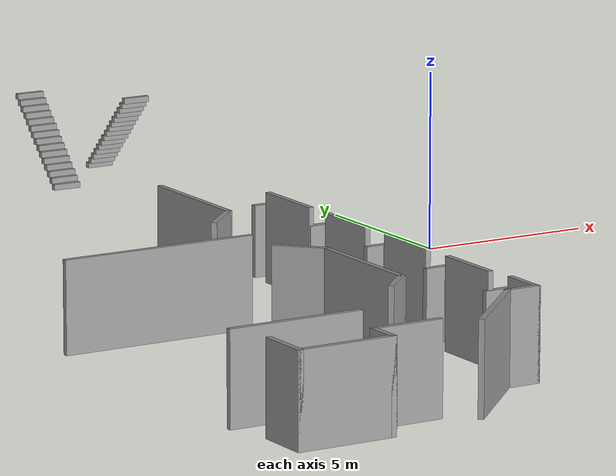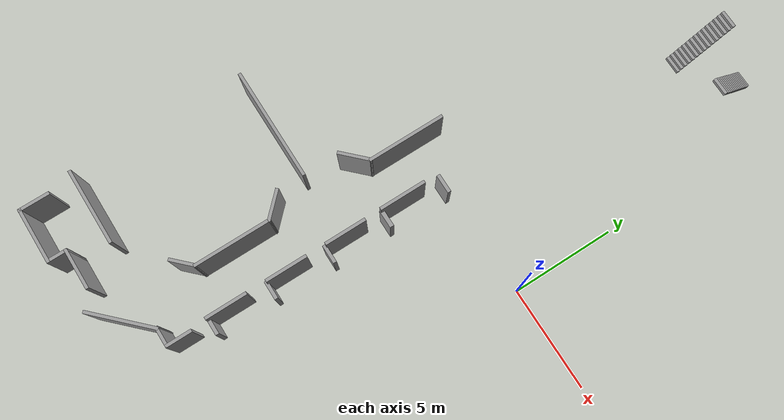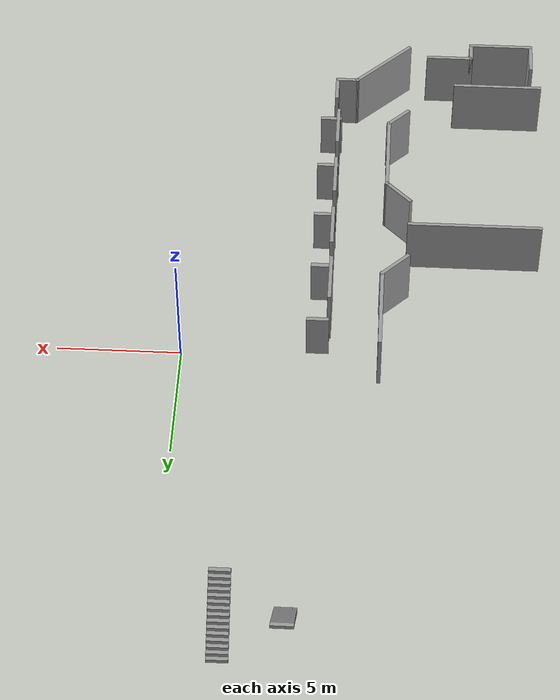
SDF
<sdf version="1.6">
 <model name="ca_vignal_1">
  <pose>-8.09627 -0.676503 0 0 -0 0</pose>
  <link name="Door_0">
   <collision name="Door_0_Collision">
    <geometry><box><size>0.865695 0.2 2</size></box></geometry>
    <pose>0 0 1 0 -0 0</pose>
   </collision>
   <visual name="Door_0_Visual">
    <pose>0 0 1 0 -0 0</pose>
    <geometry><box><size>0.865695 0.2 2</size></box></geometry>
    <material>
     <script><uri>file://media/materials/scripts/gazebo.material</uri><name>Gazebo/Grey</name></script>
    </material>
   </visual>
   <pose>2.58868 -2.60647 0 0 -0 0</pose>
  </link>
  <link name="Door_1">
   <collision name="Door_1_Collision">
    <geometry><box><size>0.9 0.17 2</size></box></geometry>
    <pose>0 0 1 0 -0 0</pose>
   </collision>
   <visual name="Door_1_Visual">
    <pose>0 0 1 0 -0 0</pose>
    <geometry><box><size>0.9 0.17 2</size></box></geometry>
    <material>
     <script><uri>file://media/materials/scripts/gazebo.material</uri><name>Gazebo/Grey</name></script>
    </material>
   </visual>
   <pose>2.62198 0.308665 0 0 -0 0</pose>
  </link>
  <link name="Door_2">
   <collision name="Door_2_Collision">
    <geometry><box><size>0.9 0.17 2</size></box></geometry>
    <pose>0 0 1 0 -0 0</pose>
   </collision>
   <visual name="Door_2_Visual">
    <pose>0 0 1 0 -0 0</pose>
    <geometry><box><size>0.9 0.17 2</size></box></geometry>
    <material>
     <script><uri>file://media/materials/scripts/gazebo.material</uri><name>Gazebo/Grey</name></script>
    </material>
   </visual>
   <pose>2.58767 -5.48891 0 0 -0 0</pose>
  </link>
  <link name="Door_3">
   <collision name="Door_3_Collision">
    <geometry><box><size>0.9 0.17 2</size></box></geometry>
    <pose>0 0 1 0 -0 0</pose>
   </collision>
   <visual name="Door_3_Visual">
    <pose>0 0 1 0 -0 0</pose>
    <geometry><box><size>0.9 0.17 2</size></box></geometry>
    <material>
     <script><uri>file://media/materials/scripts/gazebo.material</uri><name>Gazebo/Grey</name></script>
    </material>
   </visual>
   <pose>2.57631 -8.37477 0 0 -0 0</pose>
  </link>
  <link name="Door_4">
   <collision name="Door_4_Collision">
    <geometry><box><size>0.9 0.17 2</size></box></geometry>
    <pose>0 0 1 0 -0 0</pose>
   </collision>
   <visual name="Door_4_Visual">
    <pose>0 0 1 0 -0 0</pose>
    <geometry><box><size>0.9 0.17 2</size></box></geometry>
    <material>
     <script><uri>file://media/materials/scripts/gazebo.material</uri><name>Gazebo/Grey</name></script>
    </material>
   </visual>
   <pose>2.53686 -11.2152 0 0 -0 0</pose>
  </link>
  <link name="Stairs_0">
   <visual name="Stairs_0_Visual_0">
    <pose>5.56857 15.1204 0.083333 0 -0 0</pose>
    <geometry><box><size>0.816 0.160476 0.166667</size></box></geometry>
    <material>
     <script><uri>file://media/materials/scripts/gazebo.material</uri><name>Gazebo/Grey</name></script>
     <ambient>1 1 1 1</ambient>
    </material>
   </visual>
   <collision name="Stairs_0_Collision_0">
    <geometry><box><size>0.816 0.160476 0.166667</size></box></geometry>
    <pose>5.56857 15.1204 0.083333 0 -0 0</pose>
   </collision>
   <visual name="Stairs_0_Visual_1">
    <pose>5.56857 14.96 0.25 0 -0 0</pose>
    <geometry><box><size>0.816 0.160476 0.166667</size></box></geometry>
    <material>
     <script><uri>file://media/materials/scripts/gazebo.material</uri><name>Gazebo/Grey</name></script>
     <ambient>1 1 1 1</ambient>
    </material>
   </visual>
   <collision name="Stairs_0_Collision_1">
    <geometry><box><size>0.816 0.160476 0.166667</size></box></geometry>
    <pose>5.56857 14.96 0.25 0 -0 0</pose>
   </collision>
   <visual name="Stairs_0_Visual_2">
    <pose>5.56857 14.7995 0.416667 0 -0 0</pose>
    <geometry><box><size>0.816 0.160476 0.166667</size></box></geometry>
    <material>
     <script><uri>file://media/materials/scripts/gazebo.material</uri><name>Gazebo/Grey</name></script>
     <ambient>1 1 1 1</ambient>
    </material>
   </visual>
   <collision name="Stairs_0_Collision_2">
    <geometry><box><size>0.816 0.160476 0.166667</size></box></geometry>
    <pose>5.56857 14.7995 0.416667 0 -0 0</pose>
   </collision>
   <visual name="Stairs_0_Visual_3">
    <pose>5.56857 14.639 0.583333 0 -0 0</pose>
    <geometry><box><size>0.816 0.160476 0.166667</size></box></geometry>
    <material>
     <script><uri>file://media/materials/scripts/gazebo.material</uri><name>Gazebo/Grey</name></script>
     <ambient>1 1 1 1</ambient>
    </material>
   </visual>
   <collision name="Stairs_0_Collision_3">
    <geometry><box><size>0.816 0.160476 0.166667</size></box></geometry>
    <pose>5.56857 14.639 0.583333 0 -0 0</pose>
   </collision>
   <visual name="Stairs_0_Visual_4">
    <pose>5.56857 14.4785 0.75 0 -0 0</pose>
    <geometry><box><size>0.816 0.160476 0.166667</size></box></geometry>
    <material>
     <script><uri>file://media/materials/scripts/gazebo.material</uri><name>Gazebo/Grey</name></script>
     <ambient>1 1 1 1</ambient>
    </material>
   </visual>
   <collision name="Stairs_0_Collision_4">
    <geometry><box><size>0.816 0.160476 0.166667</size></box></geometry>
    <pose>5.56857 14.4785 0.75 0 -0 0</pose>
   </collision>
   <visual name="Stairs_0_Visual_5">
    <pose>5.56857 14.3181 0.916667 0 -0 0</pose>
    <geometry><box><size>0.816 0.160476 0.166667</size></box></geometry>
    <material>
     <script><uri>file://media/materials/scripts/gazebo.material</uri><name>Gazebo/Grey</name></script>
     <ambient>1 1 1 1</ambient>
    </material>
   </visual>
   <collision name="Stairs_0_Collision_5">
    <geometry><box><size>0.816 0.160476 0.166667</size></box></geometry>
    <pose>5.56857 14.3181 0.916667 0 -0 0</pose>
   </collision>
   <visual name="Stairs_0_Visual_6">
    <pose>5.56857 14.1576 1.08333 0 -0 0</pose>
    <geometry><box><size>0.816 0.160476 0.166667</size></box></geometry>
    <material>
     <script><uri>file://media/materials/scripts/gazebo.material</uri><name>Gazebo/Grey</name></script>
     <ambient>1 1 1 1</ambient>
    </material>
   </visual>
   <collision name="Stairs_0_Collision_6">
    <geometry><box><size>0.816 0.160476 0.166667</size></box></geometry>
    <pose>5.56857 14.1576 1.08333 0 -0 0</pose>
   </collision>
   <visual name="Stairs_0_Visual_7">
    <pose>5.56857 13.9971 1.25 0 -0 0</pose>
    <geometry><box><size>0.816 0.160476 0.166667</size></box></geometry>
    <material>
     <script><uri>file://media/materials/scripts/gazebo.material</uri><name>Gazebo/Grey</name></script>
     <ambient>1 1 1 1</ambient>
    </material>
   </visual>
   <collision name="Stairs_0_Collision_7">
    <geometry><box><size>0.816 0.160476 0.166667</size></box></geometry>
    <pose>5.56857 13.9971 1.25 0 -0 0</pose>
   </collision>
   <visual name="Stairs_0_Visual_8">
    <pose>5.56857 13.8366 1.41667 0 -0 0</pose>
    <geometry><box><size>0.816 0.160476 0.166667</size></box></geometry>
    <material>
     <script><uri>file://media/materials/scripts/gazebo.material</uri><name>Gazebo/Grey</name></script>
     <ambient>1 1 1 1</ambient>
    </material>
   </visual>
   <collision name="Stairs_0_Collision_8">
    <geometry><box><size>0.816 0.160476 0.166667</size></box></geometry>
    <pose>5.56857 13.8366 1.41667 0 -0 0</pose>
   </collision>
   <visual name="Stairs_0_Visual_9">
    <pose>5.56857 13.6762 1.58333 0 -0 0</pose>
    <geometry><box><size>0.816 0.160476 0.166667</size></box></geometry>
    <material>
     <script><uri>file://media/materials/scripts/gazebo.material</uri><name>Gazebo/Grey</name></script>
     <ambient>1 1 1 1</ambient>
    </material>
   </visual>
   <collision name="Stairs_0_Collision_9">
    <geometry><box><size>0.816 0.160476 0.166667</size></box></geometry>
    <pose>5.56857 13.6762 1.58333 0 -0 0</pose>
   </collision>
   <visual name="Stairs_0_Visual_10">
    <pose>5.56857 13.5157 1.75 0 -0 0</pose>
    <geometry><box><size>0.816 0.160476 0.166667</size></box></geometry>
    <material>
     <script><uri>file://media/materials/scripts/gazebo.material</uri><name>Gazebo/Grey</name></script>
     <ambient>1 1 1 1</ambient>
    </material>
   </visual>
   <collision name="Stairs_0_Collision_10">
    <geometry><box><size>0.816 0.160476 0.166667</size></box></geometry>
    <pose>5.56857 13.5157 1.75 0 -0 0</pose>
   </collision>
   <visual name="Stairs_0_Visual_11">
    <pose>5.56857 13.3552 1.91667 0 -0 0</pose>
    <geometry><box><size>0.816 0.160476 0.166667</size></box></geometry>
    <material>
     <script><uri>file://media/materials/scripts/gazebo.material</uri><name>Gazebo/Grey</name></script>
     <ambient>1 1 1 1</ambient>
    </material>
   </visual>
   <collision name="Stairs_0_Collision_11">
    <geometry><box><size>0.816 0.160476 0.166667</size></box></geometry>
    <pose>5.56857 13.3552 1.91667 0 -0 0</pose>
   </collision>
   <visual name="Stairs_0_Visual_12">
    <pose>5.56857 13.1947 2.08333 0 -0 0</pose>
    <geometry><box><size>0.816 0.160476 0.166667</size></box></geometry>
    <material>
     <script><uri>file://media/materials/scripts/gazebo.material</uri><name>Gazebo/Grey</name></script>
     <ambient>1 1 1 1</ambient>
    </material>
   </visual>
   <collision name="Stairs_0_Collision_12">
    <geometry><box><size>0.816 0.160476 0.166667</size></box></geometry>
    <pose>5.56857 13.1947 2.08333 0 -0 0</pose>
   </collision>
   <visual name="Stairs_0_Visual_13">
    <pose>5.56857 13.0343 2.25 0 -0 0</pose>
    <geometry><box><size>0.816 0.160476 0.166667</size></box></geometry>
    <material>
     <script><uri>file://media/materials/scripts/gazebo.material</uri><name>Gazebo/Grey</name></script>
     <ambient>1 1 1 1</ambient>
    </material>
   </visual>
   <collision name="Stairs_0_Collision_13">
    <geometry><box><size>0.816 0.160476 0.166667</size></box></geometry>
    <pose>5.56857 13.0343 2.25 0 -0 0</pose>
   </collision>
   <visual name="Stairs_0_Visual_14">
    <pose>5.56857 12.8738 2.41667 0 -0 0</pose>
    <geometry><box><size>0.816 0.160476 0.166667</size></box></geometry>
    <material>
     <script><uri>file://media/materials/scripts/gazebo.material</uri><name>Gazebo/Grey</name></script>
     <ambient>1 1 1 1</ambient>
    </material>
   </visual>
   <collision name="Stairs_0_Collision_14">
    <geometry><box><size>0.816 0.160476 0.166667</size></box></geometry>
    <pose>5.56857 12.8738 2.41667 0 -0 0</pose>
   </collision>
  </link>
  <link name="Stairs_1">
   <visual name="Stairs_1_Visual_0">
    <pose>3.21816 12.8727 0.083333 0 -0 -3.14159</pose>
    <geometry><box><size>0.849625 0.158942 0.166667</size></box></geometry>
    <material>
     <script><uri>file://media/materials/scripts/gazebo.material</uri><name>Gazebo/Grey</name></script>
     <ambient>1 1 1 1</ambient>
    </material>
   </visual>
   <collision name="Stairs_1_Collision_0">
    <geometry><box><size>0.849625 0.158942 0.166667</size></box></geometry>
    <pose>3.21816 12.8727 0.083333 0 -0 -3.14159</pose>
   </collision>
   <visual name="Stairs_1_Visual_1">
    <pose>3.21816 13.0316 0.25 0 -0 -3.14159</pose>
    <geometry><box><size>0.849625 0.158942 0.166667</size></box></geometry>
    <material>
     <script><uri>file://media/materials/scripts/gazebo.material</uri><name>Gazebo/Grey</name></script>
     <ambient>1 1 1 1</ambient>
    </material>
   </visual>
   <collision name="Stairs_1_Collision_1">
    <geometry><box><size>0.849625 0.158942 0.166667</size></box></geometry>
    <pose>3.21816 13.0316 0.25 0 -0 -3.14159</pose>
   </collision>
   <visual name="Stairs_1_Visual_2">
    <pose>3.21816 13.1906 0.416667 0 -0 -3.14159</pose>
    <geometry><box><size>0.849625 0.158942 0.166667</size></box></geometry>
    <material>
     <script><uri>file://media/materials/scripts/gazebo.material</uri><name>Gazebo/Grey</name></script>
     <ambient>1 1 1 1</ambient>
    </material>
   </visual>
   <collision name="Stairs_1_Collision_2">
    <geometry><box><size>0.849625 0.158942 0.166667</size></box></geometry>
    <pose>3.21816 13.1906 0.416667 0 -0 -3.14159</pose>
   </collision>
   <visual name="Stairs_1_Visual_3">
    <pose>3.21816 13.3495 0.583333 0 -0 -3.14159</pose>
    <geometry><box><size>0.849625 0.158942 0.166667</size></box></geometry>
    <material>
     <script><uri>file://media/materials/scripts/gazebo.material</uri><name>Gazebo/Grey</name></script>
     <ambient>1 1 1 1</ambient>
    </material>
   </visual>
   <collision name="Stairs_1_Collision_3">
    <geometry><box><size>0.849625 0.158942 0.166667</size></box></geometry>
    <pose>3.21816 13.3495 0.583333 0 -0 -3.14159</pose>
   </collision>
   <visual name="Stairs_1_Visual_4">
    <pose>3.21816 13.5085 0.75 0 -0 -3.14159</pose>
    <geometry><box><size>0.849625 0.158942 0.166667</size></box></geometry>
    <material>
     <script><uri>file://media/materials/scripts/gazebo.material</uri><name>Gazebo/Grey</name></script>
     <ambient>1 1 1 1</ambient>
    </material>
   </visual>
   <collision name="Stairs_1_Collision_4">
    <geometry><box><size>0.849625 0.158942 0.166667</size></box></geometry>
    <pose>3.21816 13.5085 0.75 0 -0 -3.14159</pose>
   </collision>
   <visual name="Stairs_1_Visual_5">
    <pose>3.21816 13.6674 0.916667 0 -0 -3.14159</pose>
    <geometry><box><size>0.849625 0.158942 0.166667</size></box></geometry>
    <material>
     <script><uri>file://media/materials/scripts/gazebo.material</uri><name>Gazebo/Grey</name></script>
     <ambient>1 1 1 1</ambient>
    </material>
   </visual>
   <collision name="Stairs_1_Collision_5">
    <geometry><box><size>0.849625 0.158942 0.166667</size></box></geometry>
    <pose>3.21816 13.6674 0.916667 0 -0 -3.14159</pose>
   </collision>
   <visual name="Stairs_1_Visual_6">
    <pose>3.21816 13.8263 1.08333 0 -0 -3.14159</pose>
    <geometry><box><size>0.849625 0.158942 0.166667</size></box></geometry>
    <material>
     <script><uri>file://media/materials/scripts/gazebo.material</uri><name>Gazebo/Grey</name></script>
     <ambient>1 1 1 1</ambient>
    </material>
   </visual>
   <collision name="Stairs_1_Collision_6">
    <geometry><box><size>0.849625 0.158942 0.166667</size></box></geometry>
    <pose>3.21816 13.8263 1.08333 0 -0 -3.14159</pose>
   </collision>
   <visual name="Stairs_1_Visual_7">
    <pose>3.21816 13.9853 1.25 0 -0 -3.14159</pose>
    <geometry><box><size>0.849625 0.158942 0.166667</size></box></geometry>
    <material>
     <script><uri>file://media/materials/scripts/gazebo.material</uri><name>Gazebo/Grey</name></script>
     <ambient>1 1 1 1</ambient>
    </material>
   </visual>
   <collision name="Stairs_1_Collision_7">
    <geometry><box><size>0.849625 0.158942 0.166667</size></box></geometry>
    <pose>3.21816 13.9853 1.25 0 -0 -3.14159</pose>
   </collision>
   <visual name="Stairs_1_Visual_8">
    <pose>3.21816 14.1442 1.41667 0 -0 -3.14159</pose>
    <geometry><box><size>0.849625 0.158942 0.166667</size></box></geometry>
    <material>
     <script><uri>file://media/materials/scripts/gazebo.material</uri><name>Gazebo/Grey</name></script>
     <ambient>1 1 1 1</ambient>
    </material>
   </visual>
   <collision name="Stairs_1_Collision_8">
    <geometry><box><size>0.849625 0.158942 0.166667</size></box></geometry>
    <pose>3.21816 14.1442 1.41667 0 -0 -3.14159</pose>
   </collision>
   <visual name="Stairs_1_Visual_9">
    <pose>3.21816 14.3032 1.58333 0 -0 -3.14159</pose>
    <geometry><box><size>0.849625 0.158942 0.166667</size></box></geometry>
    <material>
     <script><uri>file://media/materials/scripts/gazebo.material</uri><name>Gazebo/Grey</name></script>
     <ambient>1 1 1 1</ambient>
    </material>
   </visual>
   <collision name="Stairs_1_Collision_9">
    <geometry><box><size>0.849625 0.158942 0.166667</size></box></geometry>
    <pose>3.21816 14.3032 1.58333 0 -0 -3.14159</pose>
   </collision>
   <visual name="Stairs_1_Visual_10">
    <pose>3.21816 14.4621 1.75 0 -0 -3.14159</pose>
    <geometry><box><size>0.849625 0.158942 0.166667</size></box></geometry>
    <material>
     <script><uri>file://media/materials/scripts/gazebo.material</uri><name>Gazebo/Grey</name></script>
     <ambient>1 1 1 1</ambient>
    </material>
   </visual>
   <collision name="Stairs_1_Collision_10">
    <geometry><box><size>0.849625 0.158942 0.166667</size></box></geometry>
    <pose>3.21816 14.4621 1.75 0 -0 -3.14159</pose>
   </collision>
   <visual name="Stairs_1_Visual_11">
    <pose>3.21816 14.6211 1.91667 0 -0 -3.14159</pose>
    <geometry><box><size>0.849625 0.158942 0.166667</size></box></geometry>
    <material>
     <script><uri>file://media/materials/scripts/gazebo.material</uri><name>Gazebo/Grey</name></script>
     <ambient>1 1 1 1</ambient>
    </material>
   </visual>
   <collision name="Stairs_1_Collision_11">
    <geometry><box><size>0.849625 0.158942 0.166667</size></box></geometry>
    <pose>3.21816 14.6211 1.91667 0 -0 -3.14159</pose>
   </collision>
   <visual name="Stairs_1_Visual_12">
    <pose>3.21816 14.78 2.08333 0 -0 -3.14159</pose>
    <geometry><box><size>0.849625 0.158942 0.166667</size></box></geometry>
    <material>
     <script><uri>file://media/materials/scripts/gazebo.material</uri><name>Gazebo/Grey</name></script>
     <ambient>1 1 1 1</ambient>
    </material>
   </visual>
   <collision name="Stairs_1_Collision_12">
    <geometry><box><size>0.849625 0.158942 0.166667</size></box></geometry>
    <pose>3.21816 14.78 2.08333 0 -0 -3.14159</pose>
   </collision>
   <visual name="Stairs_1_Visual_13">
    <pose>3.21816 14.9389 2.25 0 -0 -3.14159</pose>
    <geometry><box><size>0.849625 0.158942 0.166667</size></box></geometry>
    <material>
     <script><uri>file://media/materials/scripts/gazebo.material</uri><name>Gazebo/Grey</name></script>
     <ambient>1 1 1 1</ambient>
    </material>
   </visual>
   <collision name="Stairs_1_Collision_13">
    <geometry><box><size>0.849625 0.158942 0.166667</size></box></geometry>
    <pose>3.21816 14.9389 2.25 0 -0 -3.14159</pose>
   </collision>
   <visual name="Stairs_1_Visual_14">
    <pose>3.21816 15.0979 2.41667 0 -0 -3.14159</pose>
    <geometry><box><size>0.849625 0.158942 0.166667</size></box></geometry>
    <material>
     <script><uri>file://media/materials/scripts/gazebo.material</uri><name>Gazebo/Grey</name></script>
     <ambient>1 1 1 1</ambient>
    </material>
   </visual>
   <collision name="Stairs_1_Collision_14">
    <geometry><box><size>0.849625 0.158942 0.166667</size></box></geometry>
    <pose>3.21816 15.0979 2.41667 0 -0 -3.14159</pose>
   </collision>
  </link>
  <link name="Wall_12">
   <collision name="Wall_12_Collision">
    <geometry><box><size>5.5 0.15 2.5</size></box></geometry>
    <pose>0 0 1.25 0 -0 0</pose>
   </collision>
   <visual name="Wall_12_Visual">
    <pose>0 0 1.25 0 -0 0</pose>
    <geometry><box><size>5.5 0.15 2.5</size></box></geometry>
    <material>
     <script><uri>file://media/materials/scripts/gazebo.material</uri><name>Gazebo/Grey</name></script>
     <ambient>1 1 1 1</ambient>
    </material>
   </visual>
   <pose>-3.57241 -4.63113 0 0 -0 0</pose>
  </link>
  <link name="Wall_14">
   <collision name="Wall_14_Collision">
    <geometry><box><size>3.75 0.15 2.5</size></box></geometry>
    <pose>0 0 1.25 0 -0 0</pose>
   </collision>
   <visual name="Wall_14_Visual">
    <pose>0 0 1.25 0 -0 0</pose>
    <geometry><box><size>3.75 0.15 2.5</size></box></geometry>
    <material>
     <script><uri>file://media/materials/scripts/gazebo.material</uri><name>Gazebo/Grey</name></script>
     <ambient>1 1 1 1</ambient>
    </material>
   </visual>
   <pose>-4.55164 -13.0277 0 0 -0 0</pose>
  </link>
  <link name="Wall_44">
   <collision name="Wall_44_Collision">
    <geometry><box><size>1.25 0.15 2.5</size></box></geometry>
    <pose>0 0 1.25 0 -0 0</pose>
   </collision>
   <visual name="Wall_44_Visual">
    <pose>0 0 1.25 0 -0 0</pose>
    <geometry><box><size>1.25 0.15 2.5</size></box></geometry>
    <material>
     <script><uri>file://media/materials/scripts/gazebo.material</uri><name>Gazebo/Grey</name></script>
     <ambient>1 1 1 1</ambient>
    </material>
   </visual>
   <pose>-0.323158 -10.8959 0 0 -0 0.785398</pose>
  </link>
  <link name="Wall_45">
   <collision name="Wall_45_Collision">
    <geometry><box><size>3.75 0.15 2.5</size></box></geometry>
    <pose>0 0 1.25 0 -0 0</pose>
   </collision>
   <visual name="Wall_45_Visual">
    <pose>0 0 1.25 0 -0 0</pose>
    <geometry><box><size>3.75 0.15 2.5</size></box></geometry>
    <material>
     <script><uri>file://media/materials/scripts/gazebo.material</uri><name>Gazebo/Grey</name></script>
     <ambient>1 1 1 1</ambient>
    </material>
   </visual>
   <pose>0.065752 -8.70696 0 0 -0 1.5708</pose>
  </link>
  <link name="Wall_46">
   <collision name="Wall_46_Collision">
    <geometry><box><size>1.5 0.15 2.5</size></box></geometry>
    <pose>0 0 1.25 0 -0 0</pose>
   </collision>
   <visual name="Wall_46_Visual">
    <pose>0 0 1.25 0 -0 0</pose>
    <geometry><box><size>1.5 0.15 2.5</size></box></geometry>
    <material>
     <script><uri>file://media/materials/scripts/gazebo.material</uri><name>Gazebo/Grey</name></script>
     <ambient>1 1 1 1</ambient>
    </material>
   </visual>
   <pose>-0.411545 -6.42966 0 0 -0 2.35619</pose>
  </link>
  <link name="Wall_65">
   <collision name="Wall_65_Collision">
    <geometry><box><size>1.5 0.15 2.5</size></box></geometry>
    <pose>0 0 1.25 0 -0 0</pose>
   </collision>
   <visual name="Wall_65_Visual">
    <pose>0 0 1.25 0 -0 0</pose>
    <geometry><box><size>1.5 0.15 2.5</size></box></geometry>
    <material>
     <script><uri>file://media/materials/scripts/gazebo.material</uri><name>Gazebo/Grey</name></script>
     <ambient>1 1 1 1</ambient>
    </material>
   </visual>
   <pose>-6.01238 -14.9495 0 0 0 -1.5708</pose>
  </link>
  <link name="Wall_66">
   <collision name="Wall_66_Collision">
    <geometry><box><size>2.75 0.15 2.5</size></box></geometry>
    <pose>0 0 1.25 0 -0 0</pose>
   </collision>
   <visual name="Wall_66_Visual">
    <pose>0 0 1.25 0 -0 0</pose>
    <geometry><box><size>2.75 0.15 2.5</size></box></geometry>
    <material>
     <script><uri>file://media/materials/scripts/gazebo.material</uri><name>Gazebo/Grey</name></script>
     <ambient>1 1 1 1</ambient>
    </material>
   </visual>
   <pose>-4.71238 -15.6245 0 0 -0 0</pose>
  </link>
  <link name="Wall_67">
   <collision name="Wall_67_Collision">
    <geometry><box><size>1 0.15 2.5</size></box></geometry>
    <pose>0 0 1.25 0 -0 0</pose>
   </collision>
   <visual name="Wall_67_Visual">
    <pose>0 0 1.25 0 -0 0</pose>
    <geometry><box><size>1 0.15 2.5</size></box></geometry>
    <material>
     <script><uri>file://media/materials/scripts/gazebo.material</uri><name>Gazebo/Grey</name></script>
     <ambient>1 1 1 1</ambient>
    </material>
   </visual>
   <pose>-3.41238 -15.1995 0 0 -0 1.5708</pose>
  </link>
  <link name="Wall_68">
   <collision name="Wall_68_Collision">
    <geometry><box><size>2 0.15 2.5</size></box></geometry>
    <pose>0 0 1.25 0 -0 0</pose>
   </collision>
   <visual name="Wall_68_Visual">
    <pose>0 0 1.25 0 -0 0</pose>
    <geometry><box><size>2 0.15 2.5</size></box></geometry>
    <material>
     <script><uri>file://media/materials/scripts/gazebo.material</uri><name>Gazebo/Grey</name></script>
     <ambient>1 1 1 1</ambient>
    </material>
   </visual>
   <pose>-2.48738 -14.7745 0 0 -0 0</pose>
  </link>
  <link name="Wall_70">
   <collision name="Wall_70_Collision">
    <geometry><box><size>3.25 0.15 2.5</size></box></geometry>
    <pose>0 0 1.25 0 -0 0</pose>
   </collision>
   <visual name="Wall_70_Visual">
    <pose>0 0 1.25 0 -0 0</pose>
    <geometry><box><size>3.25 0.15 2.5</size></box></geometry>
    <material>
     <script><uri>file://media/materials/scripts/gazebo.material</uri><name>Gazebo/Grey</name></script>
     <ambient>1 1 1 1</ambient>
    </material>
   </visual>
   <pose>0.406702 -14.2431 0 0 -0 0.785398</pose>
  </link>
  <link name="Wall_71">
   <collision name="Wall_71_Collision">
    <geometry><box><size>1 0.15 2.5</size></box></geometry>
    <pose>0 0 1.25 0 -0 0</pose>
   </collision>
   <visual name="Wall_71_Visual">
    <pose>0 0 1.25 0 -0 0</pose>
    <geometry><box><size>1 0.15 2.5</size></box></geometry>
    <material>
     <script><uri>file://media/materials/scripts/gazebo.material</uri><name>Gazebo/Grey</name></script>
     <ambient>1 1 1 1</ambient>
    </material>
   </visual>
   <pose>1.92772 -13.1471 0 0 -0 0</pose>
  </link>
  <link name="Wall_72">
   <collision name="Wall_72_Collision">
    <geometry><box><size>1.25 0.15 2.5</size></box></geometry>
    <pose>0 0 1.25 0 -0 0</pose>
   </collision>
   <visual name="Wall_72_Visual">
    <pose>0 0 1.25 0 -0 0</pose>
    <geometry><box><size>1.25 0.15 2.5</size></box></geometry>
    <material>
     <script><uri>file://media/materials/scripts/gazebo.material</uri><name>Gazebo/Grey</name></script>
     <ambient>1 1 1 1</ambient>
    </material>
   </visual>
   <pose>2.35272 -12.5971 0 0 -0 1.5708</pose>
  </link>
  <link name="Wall_74">
   <collision name="Wall_74_Collision">
    <geometry><box><size>2 0.15 2.5</size></box></geometry>
    <pose>0 0 1.25 0 -0 0</pose>
   </collision>
   <visual name="Wall_74_Visual">
    <pose>0 0 1.25 0 -0 0</pose>
    <geometry><box><size>2 0.15 2.5</size></box></geometry>
    <material>
     <script><uri>file://media/materials/scripts/gazebo.material</uri><name>Gazebo/Grey</name></script>
     <ambient>1 1 1 1</ambient>
    </material>
   </visual>
   <pose>2.23077 -10.2773 0 0 -0 1.5708</pose>
  </link>
  <link name="Wall_76">
   <collision name="Wall_76_Collision">
    <geometry><box><size>2 0.15 2.5</size></box></geometry>
    <pose>0 0 1.25 0 -0 0</pose>
   </collision>
   <visual name="Wall_76_Visual">
    <pose>0 0 1.25 0 -0 0</pose>
    <geometry><box><size>2 0.15 2.5</size></box></geometry>
    <material>
     <script><uri>file://media/materials/scripts/gazebo.material</uri><name>Gazebo/Grey</name></script>
     <ambient>1 1 1 1</ambient>
    </material>
   </visual>
   <pose>2.23077 -7.35725 0 0 -0 1.5708</pose>
  </link>
  <link name="Wall_78">
   <collision name="Wall_78_Collision">
    <geometry><box><size>2 0.15 2.5</size></box></geometry>
    <pose>0 0 1.25 0 -0 0</pose>
   </collision>
   <visual name="Wall_78_Visual">
    <pose>0 0 1.25 0 -0 0</pose>
    <geometry><box><size>2 0.15 2.5</size></box></geometry>
    <material>
     <script><uri>file://media/materials/scripts/gazebo.material</uri><name>Gazebo/Grey</name></script>
     <ambient>1 1 1 1</ambient>
    </material>
   </visual>
   <pose>2.23077 -4.43717 0 0 -0 1.5708</pose>
  </link>
  <link name="Wall_8">
   <collision name="Wall_8_Collision">
    <geometry><box><size>1.57222 0.15 2.5</size></box></geometry>
    <pose>0 0 1.25 0 -0 0</pose>
   </collision>
   <visual name="Wall_8_Visual">
    <pose>0 0 1.25 0 -0 0</pose>
    <geometry><box><size>1.57222 0.15 2.5</size></box></geometry>
    <material>
     <script><uri>file://media/materials/scripts/gazebo.material</uri><name>Gazebo/Grey</name></script>
     <ambient>1 1 1 1</ambient>
    </material>
   </visual>
   <pose>-0.370762 -2.34657 0 0 -0 0.787693</pose>
  </link>
  <link name="Wall_80">
   <collision name="Wall_80_Collision">
    <geometry><box><size>2.25 0.15 2.5</size></box></geometry>
    <pose>0 0 1.25 0 -0 0</pose>
   </collision>
   <visual name="Wall_80_Visual">
    <pose>0 0 1.25 0 -0 0</pose>
    <geometry><box><size>2.25 0.15 2.5</size></box></geometry>
    <material>
     <script><uri>file://media/materials/scripts/gazebo.material</uri><name>Gazebo/Grey</name></script>
     <ambient>1 1 1 1</ambient>
    </material>
   </visual>
   <pose>2.20035 -1.54418 0 0 -0 1.5708</pose>
  </link>
  <link name="Wall_9">
   <collision name="Wall_9_Collision">
    <geometry><box><size>3.75 0.15 2.5</size></box></geometry>
    <pose>0 0 1.25 0 -0 0</pose>
   </collision>
   <visual name="Wall_9_Visual">
    <pose>0 0 1.25 0 -0 0</pose>
    <geometry><box><size>3.75 0.15 2.5</size></box></geometry>
    <material>
     <script><uri>file://media/materials/scripts/gazebo.material</uri><name>Gazebo/Grey</name></script>
     <ambient>1 1 1 1</ambient>
    </material>
   </visual>
   <pose>0.130913 -0.042583 0 0 -0 1.5708</pose>
  </link>
  <static>1</static>
 </model>
</sdf>
